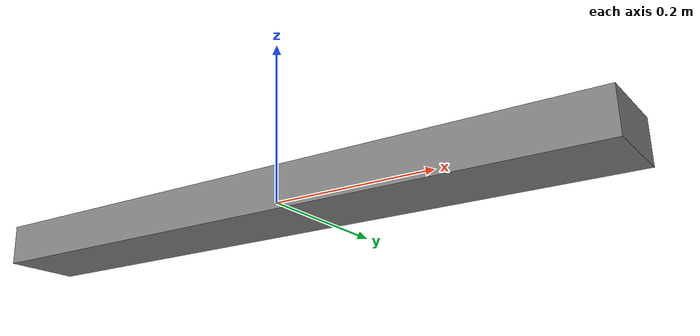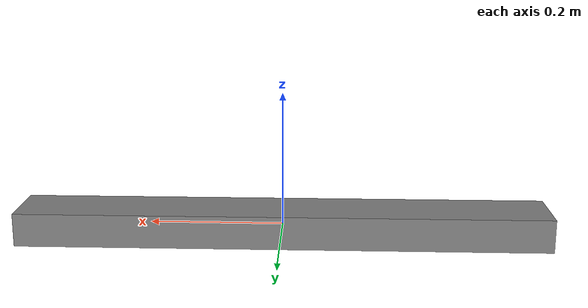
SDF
<?xml version="1.0"?>
<sdf version="1.8">
  <model name="occluder_box">
    <static>true</static>
    <link name="link">
      <visual name="visual">
        <geometry>
          <box>
            <size>0.8 0.1 0.05</size>
          </box>
        </geometry>
        <material>
          <ambient>0.5 0.5 0.5 1</ambient>
          <diffuse>0.5 0.5 0.5 1</diffuse>
        </material>
      </visual>
      <collision name="collision">
        <geometry>
          <box>
            <size>0.8 0.1 0.05</size>
          </box>
        </geometry>
      </collision>
    </link>
  </model>
</sdf>
